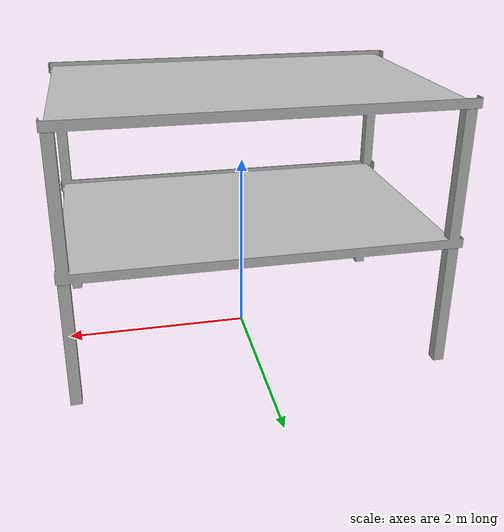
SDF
<?xml version='1.0'?>
<sdf version='1.6'>
  <model name='Shelf'>
    <static>true</static>
    <link name="link">
      <visual name="visual">
      <pose>-6.467512 1.214089 0 0 0 0</pose>
            <geometry>
                <mesh>
                  <uri>model://workcell_shelf/meshes/shelf.dae</uri>
                </mesh>
            </geometry>
        </visual>
        <collision name="collision">
      <pose>-6.467512 1.214089 0 0 0 0</pose>
            <geometry>
                <mesh>
                  <uri>model://workcell_shelf/meshes/shelf.dae</uri>
                </mesh>
            </geometry>
        </collision>
    </link>
  </model>
</sdf>
